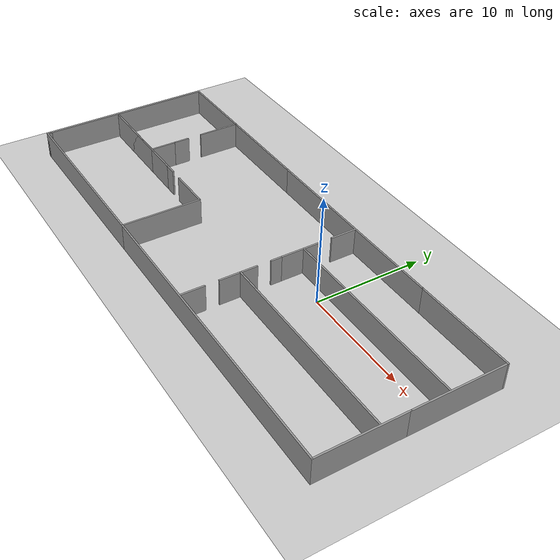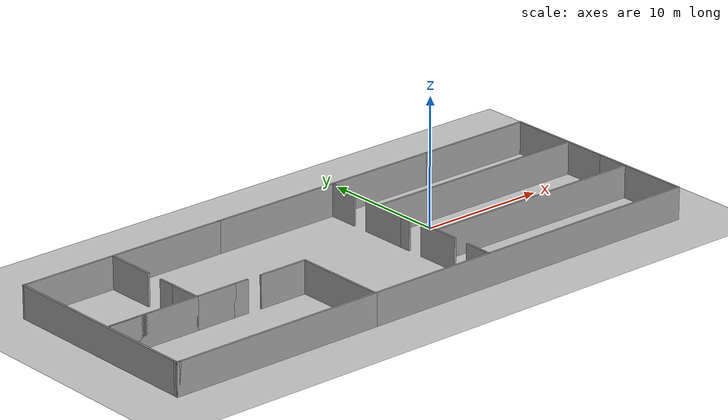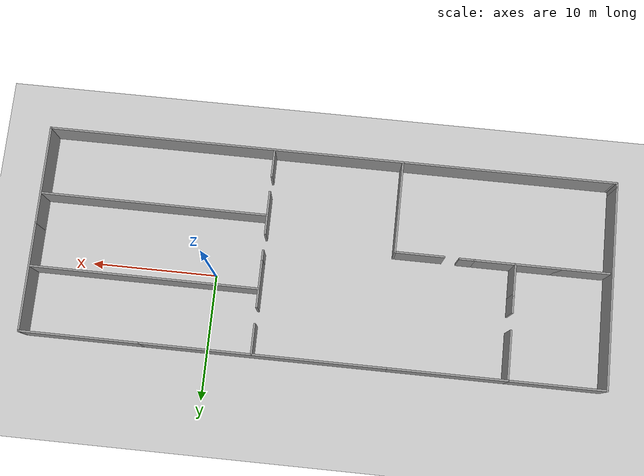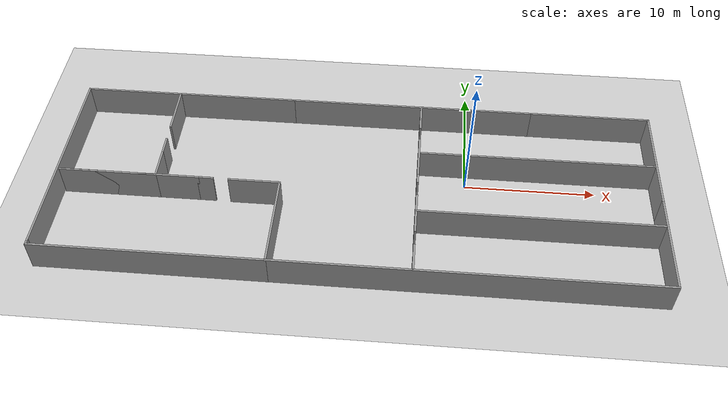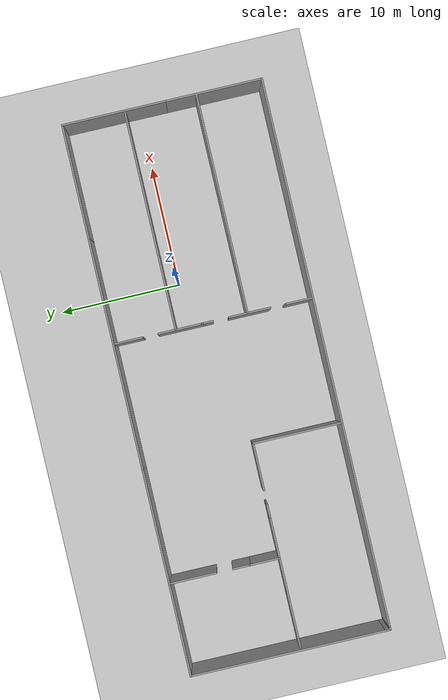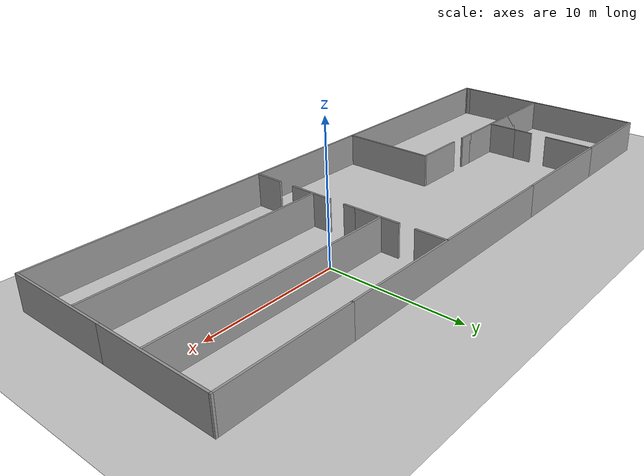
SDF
<sdf version="1.6">
 <world name="default">
  <light name="sun" type="directional">
   <pose>0 0 10 0 -0 0</pose>
   <diffuse>0.8 0.8 0.8 1</diffuse>
   <specular>0.1 0.1 0.1 1</specular>
   <attenuation>
    <range>1000</range>
    <constant>0.9</constant>
    <linear>0.01</linear>
    <quadratic>0.001</quadratic>
   </attenuation>
   <direction>-0.5 0.5 -1</direction>
  </light>
  <model name="ground_plane">
   <static>1</static>
   <link name="link">
    <collision name="collision">
     <geometry><plane><normal>0 0 1</normal><size>100 100</size></plane></geometry>
     <surface><friction><ode><mu>100</mu><mu2>50</mu2></ode></friction></surface>
    </collision>
    <visual name="visual">
     <cast_shadows>0</cast_shadows>
     <geometry><plane><normal>0 0 1</normal><size>100 100</size></plane></geometry>
     <material>
      <script><uri>file://media/materials/scripts/gazebo.material</uri><name>Gazebo/Grey</name></script>
     </material>
    </visual>
   </link>
  </model>
  <gravity>0 0 -9.8</gravity>
  <magnetic_field>6e-06 2.3e-05 -4.2e-05</magnetic_field>
  <atmosphere type="adiabatic"/>
  <physics name="default_physics" default="0" type="ode">
   <max_step_size>0.001</max_step_size>
   <real_time_factor>1</real_time_factor>
   <real_time_update_rate>1000</real_time_update_rate>
  </physics>
  <scene><ambient>0.4 0.4 0.4 1</ambient><background>0.7 0.7 0.7 1</background><shadows>1</shadows></scene>
  <spherical_coordinates>
   <surface_model>EARTH_WGS84</surface_model>
   <latitude_deg>0</latitude_deg>
   <longitude_deg>0</longitude_deg>
   <elevation>0</elevation>
   <heading_deg>0</heading_deg>
  </spherical_coordinates>
  <model name="rooms_2">
   <pose>-8.35287 -2.02586 0 0 -0 0</pose>
   <link name="Wall_12">
    <collision name="Wall_12_Collision">
     <geometry><box><size>9.5 0.15 2.5</size></box></geometry>
     <pose>0 0 1.25 0 -0 0</pose>
    </collision>
    <visual name="Wall_12_Visual">
     <pose>0 0 1.25 0 -0 0</pose>
     <geometry><box><size>9.5 0.15 2.5</size></box></geometry>
     <material>
      <script><uri>file://media/materials/scripts/gazebo.material</uri><name>Gazebo/Grey</name></script>
      <ambient>1 1 1 1</ambient>
     </material>
    </visual>
    <pose>-10.425 8.225 0 0 -0 3.14159</pose>
   </link>
   <link name="Wall_18">
    <collision name="Wall_18_Collision">
     <geometry><box><size>28.5 0.15 2.5</size></box></geometry>
     <pose>0 0 1.25 0 -0 0</pose>
    </collision>
    <visual name="Wall_18_Visual">
     <pose>0 0 1.25 0 -0 0</pose>
     <geometry><box><size>28.5 0.15 2.5</size></box></geometry>
     <material>
      <script><uri>file://media/materials/scripts/gazebo.material</uri><name>Gazebo/Grey</name></script>
      <ambient>1 1 1 1</ambient>
     </material>
    </visual>
    <pose>8.525 -8.225 0 0 -0 3.14159</pose>
   </link>
   <link name="Wall_23">
    <collision name="Wall_23_Collision">
     <geometry><box><size>4 0.15 2.5</size></box></geometry>
     <pose>0 0 1.25 0 -0 0</pose>
    </collision>
    <visual name="Wall_23_Visual">
     <pose>0 0 1.25 0 -0 0</pose>
     <geometry><box><size>4 0.15 2.5</size></box></geometry>
     <material>
      <script><uri>file://media/materials/scripts/gazebo.material</uri><name>Gazebo/Grey</name></script>
      <ambient>1 1 1 1</ambient>
     </material>
    </visual>
    <pose>-15.1 6.3 0 0 0 -1.5708</pose>
   </link>
   <link name="Wall_25">
    <collision name="Wall_25_Collision">
     <geometry><box><size>2.60202 0.15 2.5</size></box></geometry>
     <pose>0 0 1.25 0 -0 0</pose>
    </collision>
    <visual name="Wall_25_Visual">
     <pose>0 0 1.25 0 -0 0</pose>
     <geometry><box><size>2.60202 0.15 2.5</size></box></geometry>
     <material>
      <script><uri>file://media/materials/scripts/gazebo.material</uri><name>Gazebo/Grey</name></script>
      <ambient>1 1 1 1</ambient>
     </material>
    </visual>
    <pose>-15.1 0.358276 0 0 -0 1.5708</pose>
   </link>
   <link name="Wall_29">
    <collision name="Wall_29_Collision">
     <geometry><box><size>7.75 0.15 2.5</size></box></geometry>
     <pose>0 0 1.25 0 -0 0</pose>
    </collision>
    <visual name="Wall_29_Visual">
     <pose>0 0 1.25 0 -0 0</pose>
     <geometry><box><size>7.75 0.15 2.5</size></box></geometry>
     <material>
      <script><uri>file://media/materials/scripts/gazebo.material</uri><name>Gazebo/Grey</name></script>
      <ambient>1 1 1 1</ambient>
     </material>
    </visual>
    <pose>-18.9 8.225 0 0 -0 3.14159</pose>
   </link>
   <link name="Wall_30">
    <collision name="Wall_30_Collision">
     <geometry><box><size>16.25 0.15 2.5</size></box></geometry>
     <pose>0 0 1.25 0 -0 0</pose>
    </collision>
    <visual name="Wall_30_Visual">
     <pose>0 0 1.25 0 -0 0</pose>
     <geometry><box><size>16.25 0.15 2.5</size></box></geometry>
     <material>
      <script><uri>file://media/materials/scripts/gazebo.material</uri><name>Gazebo/Grey</name></script>
      <ambient>1 1 1 1</ambient>
     </material>
    </visual>
    <pose>-22.7 0.175 0 0 0 -1.5708</pose>
   </link>
   <link name="Wall_36">
    <collision name="Wall_36_Collision">
     <geometry><box><size>0.15 0.15 2.5</size></box></geometry>
     <pose>0 0 1.25 0 -0 0</pose>
    </collision>
    <visual name="Wall_36_Visual">
     <pose>0 0 1.25 0 -0 0</pose>
     <geometry><box><size>0.15 0.15 2.5</size></box></geometry>
     <material>
      <script><uri>file://media/materials/scripts/gazebo.material</uri><name>Gazebo/Grey</name></script>
      <ambient>1 1 1 1</ambient>
     </material>
    </visual>
    <pose>-22.5 -8.225 0 0 -0 0</pose>
   </link>
   <link name="Wall_4">
    <collision name="Wall_4_Collision">
     <geometry><box><size>7.3406 0.15 2.5</size></box></geometry>
     <pose>0 0 1.25 0 -0 0</pose>
    </collision>
    <visual name="Wall_4_Visual">
     <pose>0 0 1.25 0 -0 0</pose>
     <geometry><box><size>7.3406 0.15 2.5</size></box></geometry>
     <material>
      <script><uri>file://media/materials/scripts/gazebo.material</uri><name>Gazebo/Grey</name></script>
      <ambient>1 1 1 1</ambient>
     </material>
    </visual>
    <pose>-5.65 -4.48909 0 0 0 -1.5708</pose>
   </link>
   <link name="Wall_40">
    <collision name="Wall_40_Collision">
     <geometry><box><size>0.15 0.15 2.5</size></box></geometry>
     <pose>0 0 1.25 0 -0 0</pose>
    </collision>
    <visual name="Wall_40_Visual">
     <pose>0 0 1.25 0 -0 0</pose>
     <geometry><box><size>0.15 0.15 2.5</size></box></geometry>
     <material>
      <script><uri>file://media/materials/scripts/gazebo.material</uri><name>Gazebo/Grey</name></script>
      <ambient>1 1 1 1</ambient>
     </material>
    </visual>
    <pose>-22.5 -8.225 0 0 -0 0</pose>
   </link>
   <link name="Wall_43">
    <collision name="Wall_43_Collision">
     <geometry><box><size>0.5 0.15 2.5</size></box></geometry>
     <pose>0 0 1.25 0 -0 0</pose>
    </collision>
    <visual name="Wall_43_Visual">
     <pose>0 0 1.25 0 -0 0</pose>
     <geometry><box><size>0.5 0.15 2.5</size></box></geometry>
     <material>
      <script><uri>file://media/materials/scripts/gazebo.material</uri><name>Gazebo/Grey</name></script>
      <ambient>1 1 1 1</ambient>
     </material>
    </visual>
    <pose>-22.7 -8.05 0 0 0 -1.5708</pose>
   </link>
   <link name="Wall_44">
    <collision name="Wall_44_Collision">
     <geometry><box><size>17.2 0.15 2.5</size></box></geometry>
     <pose>0 0 1.25 0 -0 0</pose>
    </collision>
    <visual name="Wall_44_Visual">
     <pose>0 0 1.25 0 -0 0</pose>
     <geometry><box><size>17.2 0.15 2.5</size></box></geometry>
     <material>
      <script><uri>file://media/materials/scripts/gazebo.material</uri><name>Gazebo/Grey</name></script>
      <ambient>1 1 1 1</ambient>
     </material>
    </visual>
    <pose>-14.175 -8.225 0 0 -0 0</pose>
   </link>
   <link name="Wall_46">
    <collision name="Wall_46_Collision">
     <geometry><box><size>7.5 0.15 2.5</size></box></geometry>
     <pose>0 0 1.25 0 -0 0</pose>
    </collision>
    <visual name="Wall_46_Visual">
     <pose>0 0 1.25 0 -0 0</pose>
     <geometry><box><size>7.5 0.15 2.5</size></box></geometry>
     <material>
      <script><uri>file://media/materials/scripts/gazebo.material</uri><name>Gazebo/Grey</name></script>
      <ambient>1 1 1 1</ambient>
     </material>
    </visual>
    <pose>-18.775 -0.867734 0 0 -0 3.14159</pose>
   </link>
   <link name="Wall_47">
    <collision name="Wall_47_Collision">
     <geometry><box><size>10.75 0.15 2.5</size></box></geometry>
     <pose>0 0 1.25 0 -0 0</pose>
    </collision>
    <visual name="Wall_47_Visual">
     <pose>0 0 1.25 0 -0 0</pose>
     <geometry><box><size>10.75 0.15 2.5</size></box></geometry>
     <material>
      <script><uri>file://media/materials/scripts/gazebo.material</uri><name>Gazebo/Grey</name></script>
      <ambient>1 1 1 1</ambient>
     </material>
    </visual>
    <pose>-17.15 -0.867734 0 0 -0 0</pose>
   </link>
   <link name="Wall_50">
    <collision name="Wall_50_Collision">
     <geometry><box><size>4 0.15 2.5</size></box></geometry>
     <pose>0 0 1.25 0 -0 0</pose>
    </collision>
    <visual name="Wall_50_Visual">
     <pose>0 0 1.25 0 -0 0</pose>
     <geometry><box><size>4 0.15 2.5</size></box></geometry>
     <material>
      <script><uri>file://media/materials/scripts/gazebo.material</uri><name>Gazebo/Grey</name></script>
      <ambient>1 1 1 1</ambient>
     </material>
    </visual>
    <pose>-7.575 -0.893886 0 0 -0 3.14159</pose>
   </link>
   <link name="Wall_52">
    <collision name="Wall_52_Collision">
     <geometry><box><size>2.5 0.15 2.5</size></box></geometry>
     <pose>0 0 1.25 0 -0 0</pose>
    </collision>
    <visual name="Wall_52_Visual">
     <pose>0 0 1.25 0 -0 0</pose>
     <geometry><box><size>2.5 0.15 2.5</size></box></geometry>
     <material>
      <script><uri>file://media/materials/scripts/gazebo.material</uri><name>Gazebo/Grey</name></script>
      <ambient>1 1 1 1</ambient>
     </material>
    </visual>
    <pose>4.6443 7.04767 0 0 0 -1.5708</pose>
   </link>
   <link name="Wall_54">
    <collision name="Wall_54_Collision">
     <geometry><box><size>3.75 0.15 2.5</size></box></geometry>
     <pose>0 0 1.25 0 -0 0</pose>
    </collision>
    <visual name="Wall_54_Visual">
     <pose>0 0 1.25 0 -0 0</pose>
     <geometry><box><size>3.75 0.15 2.5</size></box></geometry>
     <material>
      <script><uri>file://media/materials/scripts/gazebo.material</uri><name>Gazebo/Grey</name></script>
      <ambient>1 1 1 1</ambient>
     </material>
    </visual>
    <pose>4.6443 2.69372 0 0 0 -1.5708</pose>
   </link>
   <link name="Wall_56">
    <collision name="Wall_56_Collision">
     <geometry><box><size>3.5 0.15 2.5</size></box></geometry>
     <pose>0 0 1.25 0 -0 0</pose>
    </collision>
    <visual name="Wall_56_Visual">
     <pose>0 0 1.25 0 -0 0</pose>
     <geometry><box><size>3.5 0.15 2.5</size></box></geometry>
     <material>
      <script><uri>file://media/materials/scripts/gazebo.material</uri><name>Gazebo/Grey</name></script>
      <ambient>1 1 1 1</ambient>
     </material>
    </visual>
    <pose>4.6443 -3.02095 0 0 0 -1.5708</pose>
   </link>
   <link name="Wall_58">
    <collision name="Wall_58_Collision">
     <geometry><box><size>2.25 0.15 2.5</size></box></geometry>
     <pose>0 0 1.25 0 -0 0</pose>
    </collision>
    <visual name="Wall_58_Visual">
     <pose>0 0 1.25 0 -0 0</pose>
     <geometry><box><size>2.25 0.15 2.5</size></box></geometry>
     <material>
      <script><uri>file://media/materials/scripts/gazebo.material</uri><name>Gazebo/Grey</name></script>
      <ambient>1 1 1 1</ambient>
     </material>
    </visual>
    <pose>4.6443 -7.10991 0 0 0 -1.5708</pose>
   </link>
   <link name="Wall_6">
    <collision name="Wall_6_Collision">
     <geometry><box><size>8 0.15 2.5</size></box></geometry>
     <pose>0 0 1.25 0 -0 0</pose>
    </collision>
    <visual name="Wall_6_Visual">
     <pose>0 0 1.25 0 -0 0</pose>
     <geometry><box><size>8 0.15 2.5</size></box></geometry>
     <material>
      <script><uri>file://media/materials/scripts/gazebo.material</uri><name>Gazebo/Grey</name></script>
      <ambient>1 1 1 1</ambient>
     </material>
    </visual>
    <pose>22.7 -4.3 0 0 -0 1.5708</pose>
   </link>
   <link name="Wall_60">
    <collision name="Wall_60_Collision">
     <geometry><box><size>18 0.15 2.5</size></box></geometry>
     <pose>0 0 1.25 0 -0 0</pose>
    </collision>
    <visual name="Wall_60_Visual">
     <pose>0 0 1.25 0 -0 0</pose>
     <geometry><box><size>18 0.15 2.5</size></box></geometry>
     <material>
      <script><uri>file://media/materials/scripts/gazebo.material</uri><name>Gazebo/Grey</name></script>
      <ambient>1 1 1 1</ambient>
     </material>
    </visual>
    <pose>13.6397 3.08657 0 0 -0 0</pose>
   </link>
   <link name="Wall_62">
    <collision name="Wall_62_Collision">
     <geometry><box><size>18 0.15 2.5</size></box></geometry>
     <pose>0 0 1.25 0 -0 0</pose>
    </collision>
    <visual name="Wall_62_Visual">
     <pose>0 0 1.25 0 -0 0</pose>
     <geometry><box><size>18 0.15 2.5</size></box></geometry>
     <material>
      <script><uri>file://media/materials/scripts/gazebo.material</uri><name>Gazebo/Grey</name></script>
      <ambient>1 1 1 1</ambient>
     </material>
    </visual>
    <pose>13.6397 -2.82346 0 0 -0 0</pose>
   </link>
   <link name="Wall_68">
    <collision name="Wall_68_Collision">
     <geometry><box><size>1.5 0.15 2.5</size></box></geometry>
     <pose>0 0 1.25 0 -0 0</pose>
    </collision>
    <visual name="Wall_68_Visual">
     <pose>0 0 1.25 0 -0 0</pose>
     <geometry><box><size>1.5 0.15 2.5</size></box></geometry>
     <material>
      <script><uri>file://media/materials/scripts/gazebo.material</uri><name>Gazebo/Grey</name></script>
      <ambient>1 1 1 1</ambient>
     </material>
    </visual>
    <pose>-15.1 2.25929 0 0 -0 1.5708</pose>
   </link>
   <link name="Wall_7">
    <collision name="Wall_7_Collision">
     <geometry><box><size>8.75 0.15 2.5</size></box></geometry>
     <pose>0 0 1.25 0 -0 0</pose>
    </collision>
    <visual name="Wall_7_Visual">
     <pose>0 0 1.25 0 -0 0</pose>
     <geometry><box><size>8.75 0.15 2.5</size></box></geometry>
     <material>
      <script><uri>file://media/materials/scripts/gazebo.material</uri><name>Gazebo/Grey</name></script>
      <ambient>1 1 1 1</ambient>
     </material>
    </visual>
    <pose>22.7 3.925 0 0 -0 1.5708</pose>
   </link>
   <link name="Wall_70">
    <collision name="Wall_70_Collision">
     <geometry><box><size>1.25 0.15 2.5</size></box></geometry>
     <pose>0 0 1.25 0 -0 0</pose>
    </collision>
    <visual name="Wall_70_Visual">
     <pose>0 0 1.25 0 -0 0</pose>
     <geometry><box><size>1.25 0.15 2.5</size></box></geometry>
     <material>
      <script><uri>file://media/materials/scripts/gazebo.material</uri><name>Gazebo/Grey</name></script>
      <ambient>1 1 1 1</ambient>
     </material>
    </visual>
    <pose>-11.3 -0.867734 0 0 -0 0</pose>
   </link>
   <link name="Wall_74">
    <collision name="Wall_74_Collision">
     <geometry><box><size>1 0.15 2.5</size></box></geometry>
     <pose>0 0 1.25 0 -0 0</pose>
    </collision>
    <visual name="Wall_74_Visual">
     <pose>0 0 1.25 0 -0 0</pose>
     <geometry><box><size>1 0.15 2.5</size></box></geometry>
     <material>
      <script><uri>file://media/materials/scripts/gazebo.material</uri><name>Gazebo/Grey</name></script>
      <ambient>1 1 1 1</ambient>
     </material>
    </visual>
    <pose>4.6443 0.46872 0 0 0 -1.5708</pose>
   </link>
   <link name="Wall_8">
    <collision name="Wall_8_Collision">
     <geometry><box><size>9.5 0.15 2.5</size></box></geometry>
     <pose>0 0 1.25 0 -0 0</pose>
    </collision>
    <visual name="Wall_8_Visual">
     <pose>0 0 1.25 0 -0 0</pose>
     <geometry><box><size>9.5 0.15 2.5</size></box></geometry>
     <material>
      <script><uri>file://media/materials/scripts/gazebo.material</uri><name>Gazebo/Grey</name></script>
      <ambient>1 1 1 1</ambient>
     </material>
    </visual>
    <pose>18.025 8.225 0 0 -0 3.14159</pose>
   </link>
   <link name="Wall_9">
    <collision name="Wall_9_Collision">
     <geometry><box><size>19.25 0.15 2.5</size></box></geometry>
     <pose>0 0 1.25 0 -0 0</pose>
    </collision>
    <visual name="Wall_9_Visual">
     <pose>0 0 1.25 0 -0 0</pose>
     <geometry><box><size>19.25 0.15 2.5</size></box></geometry>
     <material>
      <script><uri>file://media/materials/scripts/gazebo.material</uri><name>Gazebo/Grey</name></script>
      <ambient>1 1 1 1</ambient>
     </material>
    </visual>
    <pose>3.8 8.225 0 0 -0 3.14159</pose>
   </link>
   <static>1</static>
  </model>
 </world>
</sdf>
